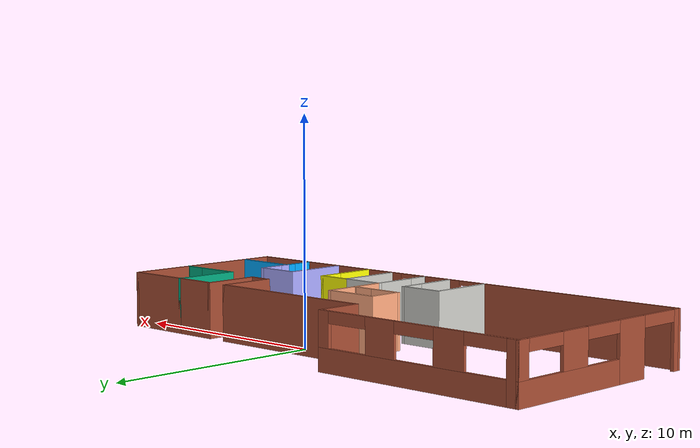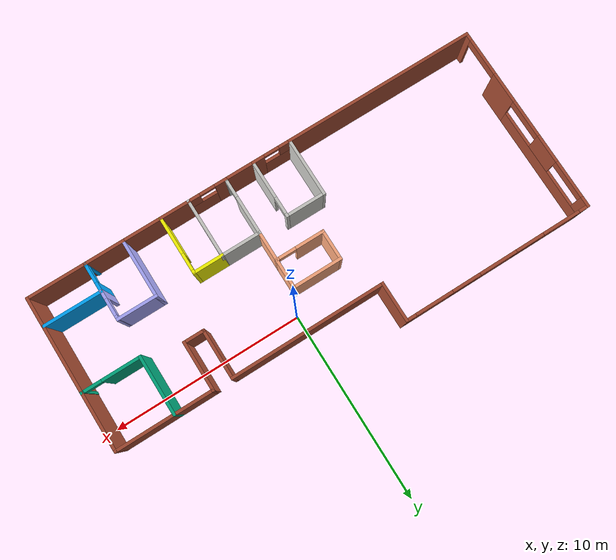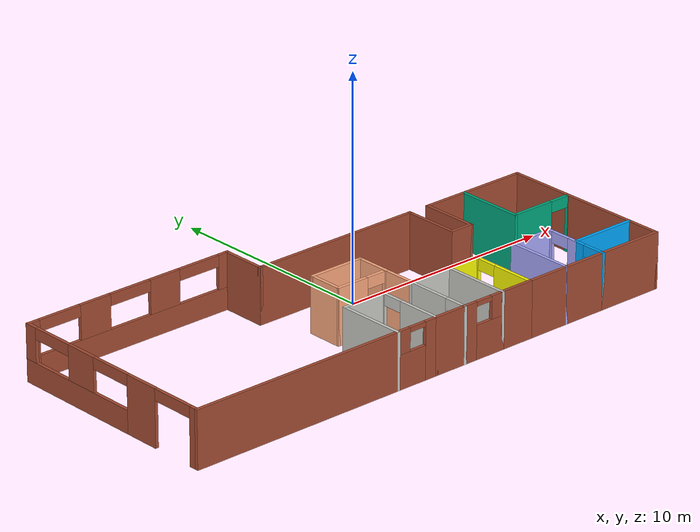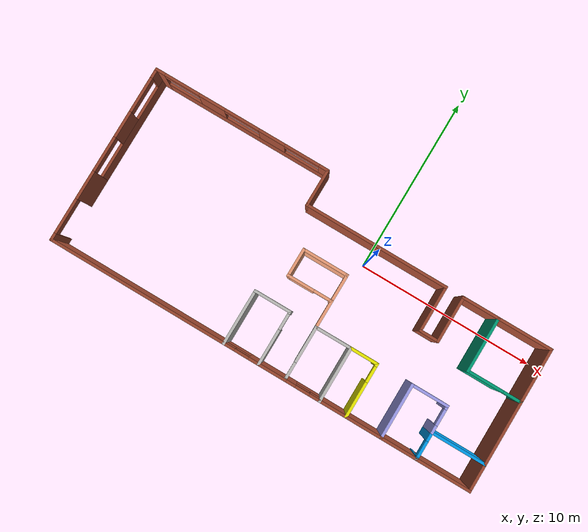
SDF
<?xml version='1.0'?>
<sdf version='1.6'>
  <model name='restaurant_renato'>
    <pose frame=''>-2 -2 0 0 -0 0</pose>
    <link name='Wall_1'>
      <pose frame=''>-12 0 0 0 -0 1.5708</pose>
      <visual name='Wall_1_Visual_0'>
        <pose frame=''>-4.85276 0 1.25 0 -0 0</pose>
        <geometry>
          <box>
            <size>0.444476 0.15 2.5</size>
          </box>
        </geometry>
        <material>
          <script>
            <uri>file://media/materials/scripts/gazebo.material</uri>
            <name>Gazebo/Bricks</name>
          </script>
          <ambient>0.333333 0.666667 1 1</ambient>
        </material>
        <meta>
          <layer>0</layer>
        </meta>
      </visual>
      <collision name='Wall_1_Collision_0'>
        <geometry>
          <box>
            <size>0.444476 0.15 2.5</size>
          </box>
        </geometry>
        <pose frame=''>-4.85276 0 1.25 0 -0 0</pose>
      </collision>
      <visual name='Wall_1_Visual_1'>
        <pose frame=''>-1.81526 0 1.25 0 -0 0</pose>
        <geometry>
          <box>
            <size>1.63052 0.15 2.5</size>
          </box>
        </geometry>
        <material>
          <script>
            <uri>file://media/materials/scripts/gazebo.material</uri>
            <name>Gazebo/Bricks</name>
          </script>
          <ambient>0.333333 0.666667 1 1</ambient>
        </material>
        <meta>
          <layer>0</layer>
        </meta>
      </visual>
      <collision name='Wall_1_Collision_1'>
        <geometry>
          <box>
            <size>1.63052 0.15 2.5</size>
          </box>
        </geometry>
        <pose frame=''>-1.81526 0 1.25 0 -0 0</pose>
      </collision>
      <visual name='Wall_1_Visual_2'>
        <pose frame=''>2.0375 0 0.5 0 -0 0</pose>
        <geometry>
          <box>
            <size>6.075 0.15 1</size>
          </box>
        </geometry>
        <material>
          <script>
            <uri>file://media/materials/scripts/gazebo.material</uri>
            <name>Gazebo/Bricks</name>
          </script>
          <ambient>0.333333 0.666667 1 1</ambient>
        </material>
        <meta>
          <layer>0</layer>
        </meta>
      </visual>
      <collision name='Wall_1_Collision_2'>
        <geometry>
          <box>
            <size>6.075 0.15 1</size>
          </box>
        </geometry>
        <pose frame=''>2.0375 0 0.5 0 -0 0</pose>
      </collision>
      <visual name='Wall_1_Visual_3'>
        <pose frame=''>1.75 0 1.75 0 -0 0</pose>
        <geometry>
          <box>
            <size>1.5 0.15 1.5</size>
          </box>
        </geometry>
        <material>
          <script>
            <uri>file://media/materials/scripts/gazebo.material</uri>
            <name>Gazebo/Bricks</name>
          </script>
          <ambient>0.333333 0.666667 1 1</ambient>
        </material>
        <meta>
          <layer>0</layer>
        </meta>
      </visual>
      <collision name='Wall_1_Collision_3'>
        <geometry>
          <box>
            <size>1.5 0.15 1.5</size>
          </box>
        </geometry>
        <pose frame=''>1.75 0 1.75 0 -0 0</pose>
      </collision>
      <visual name='Wall_1_Visual_4'>
        <pose frame=''>4.7875 0 1.75 0 -0 0</pose>
        <geometry>
          <box>
            <size>0.575 0.15 1.5</size>
          </box>
        </geometry>
        <material>
          <script>
            <uri>file://media/materials/scripts/gazebo.material</uri>
            <name>Gazebo/Bricks</name>
          </script>
          <ambient>0.333333 0.666667 1 1</ambient>
        </material>
        <meta>
          <layer>0</layer>
        </meta>
      </visual>
      <collision name='Wall_1_Collision_4'>
        <geometry>
          <box>
            <size>0.575 0.15 1.5</size>
          </box>
        </geometry>
        <pose frame=''>4.7875 0 1.75 0 -0 0</pose>
      </collision>
      <visual name='Wall_1_Visual_5'>
        <pose frame=''>-3.63052 0 2.25 0 -0 0</pose>
        <geometry>
          <box>
            <size>2 0.15 0.5</size>
          </box>
        </geometry>
        <material>
          <script>
            <uri>file://media/materials/scripts/gazebo.material</uri>
            <name>Gazebo/Bricks</name>
          </script>
          <ambient>0.333333 0.666667 1 1</ambient>
        </material>
        <meta>
          <layer>0</layer>
        </meta>
      </visual>
      <collision name='Wall_1_Collision_5'>
        <geometry>
          <box>
            <size>2 0.15 0.5</size>
          </box>
        </geometry>
        <pose frame=''>-3.63052 0 2.25 0 -0 0</pose>
      </collision>
      <visual name='Wall_1_Visual_6'>
        <pose frame=''>0 0 2.25 0 -0 0</pose>
        <geometry>
          <box>
            <size>2 0.15 0.5</size>
          </box>
        </geometry>
        <material>
          <script>
            <uri>file://media/materials/scripts/gazebo.material</uri>
            <name>Gazebo/Bricks</name>
          </script>
          <ambient>0.333333 0.666667 1 1</ambient>
        </material>
        <meta>
          <layer>0</layer>
        </meta>
      </visual>
      <collision name='Wall_1_Collision_6'>
        <geometry>
          <box>
            <size>2 0.15 0.5</size>
          </box>
        </geometry>
        <pose frame=''>0 0 2.25 0 -0 0</pose>
      </collision>
      <visual name='Wall_1_Visual_7'>
        <pose frame=''>3.5 0 2.25 0 -0 0</pose>
        <geometry>
          <box>
            <size>2 0.15 0.5</size>
          </box>
        </geometry>
        <material>
          <script>
            <uri>file://media/materials/scripts/gazebo.material</uri>
            <name>Gazebo/Bricks</name>
          </script>
          <ambient>0.333333 0.666667 1 1</ambient>
        </material>
        <meta>
          <layer>0</layer>
        </meta>
      </visual>
      <collision name='Wall_1_Collision_7'>
        <geometry>
          <box>
            <size>2 0.15 0.5</size>
          </box>
        </geometry>
        <pose frame=''>3.5 0 2.25 0 -0 0</pose>
      </collision>
    </link>
    <link name='Wall_2'>
      <pose frame=''>-7 5 0 0 -0 0</pose>
      <visual name='Wall_2_Visual_0'>
        <pose frame=''>-4.7875 0 1.25 0 -0 0</pose>
        <geometry>
          <box>
            <size>0.575 0.15 2.5</size>
          </box>
        </geometry>
        <material>
          <script>
            <uri>file://media/materials/scripts/gazebo.material</uri>
            <name>Gazebo/Bricks</name>
          </script>
          <ambient>0.333333 0.666667 1 1</ambient>
        </material>
        <meta>
          <layer>0</layer>
        </meta>
      </visual>
      <collision name='Wall_2_Collision_0'>
        <geometry>
          <box>
            <size>0.575 0.15 2.5</size>
          </box>
        </geometry>
        <pose frame=''>-4.7875 0 1.25 0 -0 0</pose>
      </collision>
      <visual name='Wall_2_Visual_1'>
        <pose frame=''>0.2875 0 0.5 0 -0 0</pose>
        <geometry>
          <box>
            <size>9.575 0.15 1</size>
          </box>
        </geometry>
        <material>
          <script>
            <uri>file://media/materials/scripts/gazebo.material</uri>
            <name>Gazebo/Bricks</name>
          </script>
          <ambient>0.333333 0.666667 1 1</ambient>
        </material>
        <meta>
          <layer>0</layer>
        </meta>
      </visual>
      <collision name='Wall_2_Collision_1'>
        <geometry>
          <box>
            <size>9.575 0.15 1</size>
          </box>
        </geometry>
        <pose frame=''>0.2875 0 0.5 0 -0 0</pose>
      </collision>
      <visual name='Wall_2_Visual_2'>
        <pose frame=''>-1.75 0 1.75 0 -0 0</pose>
        <geometry>
          <box>
            <size>1.5 0.15 1.5</size>
          </box>
        </geometry>
        <material>
          <script>
            <uri>file://media/materials/scripts/gazebo.material</uri>
            <name>Gazebo/Bricks</name>
          </script>
          <ambient>0.333333 0.666667 1 1</ambient>
        </material>
        <meta>
          <layer>0</layer>
        </meta>
      </visual>
      <collision name='Wall_2_Collision_2'>
        <geometry>
          <box>
            <size>1.5 0.15 1.5</size>
          </box>
        </geometry>
        <pose frame=''>-1.75 0 1.75 0 -0 0</pose>
      </collision>
      <visual name='Wall_2_Visual_3'>
        <pose frame=''>1.75 0 1.75 0 -0 0</pose>
        <geometry>
          <box>
            <size>1.5 0.15 1.5</size>
          </box>
        </geometry>
        <material>
          <script>
            <uri>file://media/materials/scripts/gazebo.material</uri>
            <name>Gazebo/Bricks</name>
          </script>
          <ambient>0.333333 0.666667 1 1</ambient>
        </material>
        <meta>
          <layer>0</layer>
        </meta>
      </visual>
      <collision name='Wall_2_Collision_3'>
        <geometry>
          <box>
            <size>1.5 0.15 1.5</size>
          </box>
        </geometry>
        <pose frame=''>1.75 0 1.75 0 -0 0</pose>
      </collision>
      <visual name='Wall_2_Visual_4'>
        <pose frame=''>4.7875 0 1.75 0 -0 0</pose>
        <geometry>
          <box>
            <size>0.575 0.15 1.5</size>
          </box>
        </geometry>
        <material>
          <script>
            <uri>file://media/materials/scripts/gazebo.material</uri>
            <name>Gazebo/Bricks</name>
          </script>
          <ambient>0.333333 0.666667 1 1</ambient>
        </material>
        <meta>
          <layer>0</layer>
        </meta>
      </visual>
      <collision name='Wall_2_Collision_4'>
        <geometry>
          <box>
            <size>0.575 0.15 1.5</size>
          </box>
        </geometry>
        <pose frame=''>4.7875 0 1.75 0 -0 0</pose>
      </collision>
      <visual name='Wall_2_Visual_5'>
        <pose frame=''>-3.5 0 2.25 0 -0 0</pose>
        <geometry>
          <box>
            <size>2 0.15 0.5</size>
          </box>
        </geometry>
        <material>
          <script>
            <uri>file://media/materials/scripts/gazebo.material</uri>
            <name>Gazebo/Bricks</name>
          </script>
          <ambient>0.333333 0.666667 1 1</ambient>
        </material>
        <meta>
          <layer>0</layer>
        </meta>
      </visual>
      <collision name='Wall_2_Collision_5'>
        <geometry>
          <box>
            <size>2 0.15 0.5</size>
          </box>
        </geometry>
        <pose frame=''>-3.5 0 2.25 0 -0 0</pose>
      </collision>
      <visual name='Wall_2_Visual_6'>
        <pose frame=''>0 0 2.25 0 -0 0</pose>
        <geometry>
          <box>
            <size>2 0.15 0.5</size>
          </box>
        </geometry>
        <material>
          <script>
            <uri>file://media/materials/scripts/gazebo.material</uri>
            <name>Gazebo/Bricks</name>
          </script>
          <ambient>0.333333 0.666667 1 1</ambient>
        </material>
        <meta>
          <layer>0</layer>
        </meta>
      </visual>
      <collision name='Wall_2_Collision_6'>
        <geometry>
          <box>
            <size>2 0.15 0.5</size>
          </box>
        </geometry>
        <pose frame=''>0 0 2.25 0 -0 0</pose>
      </collision>
      <visual name='Wall_2_Visual_7'>
        <pose frame=''>3.5 0 2.25 0 -0 0</pose>
        <geometry>
          <box>
            <size>2 0.15 0.5</size>
          </box>
        </geometry>
        <material>
          <script>
            <uri>file://media/materials/scripts/gazebo.material</uri>
            <name>Gazebo/Bricks</name>
          </script>
          <ambient>0.333333 0.666667 1 1</ambient>
        </material>
        <meta>
          <layer>0</layer>
        </meta>
      </visual>
      <collision name='Wall_2_Collision_7'>
        <geometry>
          <box>
            <size>2 0.15 0.5</size>
          </box>
        </geometry>
        <pose frame=''>3.5 0 2.25 0 -0 0</pose>
      </collision>
    </link>
    <link name='Wall_24'>
      <collision name='Wall_24_Collision'>
        <geometry>
          <box>
            <size>3.15 0.15 2.5</size>
          </box>
        </geometry>
        <pose frame=''>0 0 1.25 0 -0 0</pose>
      </collision>
      <visual name='Wall_24_Visual'>
        <pose frame=''>0 0 1.25 0 -0 0</pose>
        <geometry>
          <box>
            <size>3.15 0.15 2.5</size>
          </box>
        </geometry>
        <material>
          <script>
            <uri>file://media/materials/scripts/gazebo.material</uri>
            <name>Gazebo/CeilingTiled</name>
          </script>
          <ambient>1 0 0 1</ambient>
        </material>
        <meta>
          <layer>0</layer>
        </meta>
      </visual>
      <pose frame=''>-2 -3.5 0 0 -0 1.5708</pose>
    </link>
    <link name='Wall_25'>
      <collision name='Wall_25_Collision'>
        <geometry>
          <box>
            <size>2.15 0.15 2.5</size>
          </box>
        </geometry>
        <pose frame=''>0 0 1.25 0 -0 0</pose>
      </collision>
      <visual name='Wall_25_Visual'>
        <pose frame=''>0 0 1.25 0 -0 0</pose>
        <geometry>
          <box>
            <size>2.15 0.15 2.5</size>
          </box>
        </geometry>
        <material>
          <script>
            <uri>file://media/materials/scripts/gazebo.material</uri>
            <name>Gazebo/CeilingTiled</name>
          </script>
          <ambient>1 0 0 1</ambient>
        </material>
        <meta>
          <layer>0</layer>
        </meta>
      </visual>
      <pose frame=''>-1 -2 0 0 -0 0</pose>
    </link>
    <link name='Wall_26'>
      <pose frame=''>0 -3.5 0 0 0 -1.5708</pose>
      <visual name='Wall_26_Visual_0'>
        <pose frame=''>-1.47325 0 1.25 0 -0 0</pose>
        <geometry>
          <box>
            <size>0.203506 0.15 2.5</size>
          </box>
        </geometry>
        <material>
          <script>
            <uri>file://media/materials/scripts/gazebo.material</uri>
            <name>Gazebo/CeilingTiled</name>
          </script>
          <ambient>1 0 0 1</ambient>
        </material>
        <meta>
          <layer>0</layer>
        </meta>
      </visual>
      <collision name='Wall_26_Collision_0'>
        <geometry>
          <box>
            <size>0.203506 0.15 2.5</size>
          </box>
        </geometry>
        <pose frame=''>-1.47325 0 1.25 0 -0 0</pose>
      </collision>
      <visual name='Wall_26_Visual_1'>
        <pose frame=''>0.551753 0 1.25 0 -0 0</pose>
        <geometry>
          <box>
            <size>2.04649 0.15 2.5</size>
          </box>
        </geometry>
        <material>
          <script>
            <uri>file://media/materials/scripts/gazebo.material</uri>
            <name>Gazebo/CeilingTiled</name>
          </script>
          <ambient>1 0 0 1</ambient>
        </material>
        <meta>
          <layer>0</layer>
        </meta>
      </visual>
      <collision name='Wall_26_Collision_1'>
        <geometry>
          <box>
            <size>2.04649 0.15 2.5</size>
          </box>
        </geometry>
        <pose frame=''>0.551753 0 1.25 0 -0 0</pose>
      </collision>
      <visual name='Wall_26_Visual_2'>
        <pose frame=''>-0.921494 0 2.25 0 -0 0</pose>
        <geometry>
          <box>
            <size>0.9 0.15 0.5</size>
          </box>
        </geometry>
        <material>
          <script>
            <uri>file://media/materials/scripts/gazebo.material</uri>
            <name>Gazebo/CeilingTiled</name>
          </script>
          <ambient>1 0 0 1</ambient>
        </material>
        <meta>
          <layer>0</layer>
        </meta>
      </visual>
      <collision name='Wall_26_Collision_2'>
        <geometry>
          <box>
            <size>0.9 0.15 0.5</size>
          </box>
        </geometry>
        <pose frame=''>-0.921494 0 2.25 0 -0 0</pose>
      </collision>
    </link>
    <link name='Wall_27'>
      <pose frame=''>-1 -5 0 0 -0 3.14159</pose>
      <visual name='Wall_27_Visual_0'>
        <pose frame=''>-0.7375 0 1.25 0 -0 0</pose>
        <geometry>
          <box>
            <size>0.675 0.15 2.5</size>
          </box>
        </geometry>
        <material>
          <script>
            <uri>file://media/materials/scripts/gazebo.material</uri>
            <name>Gazebo/Bricks</name>
          </script>
          <ambient>0.333333 0.666667 1 1</ambient>
        </material>
        <meta>
          <layer>0</layer>
        </meta>
      </visual>
      <collision name='Wall_27_Collision_0'>
        <geometry>
          <box>
            <size>0.675 0.15 2.5</size>
          </box>
        </geometry>
        <pose frame=''>-0.7375 0 1.25 0 -0 0</pose>
      </collision>
      <visual name='Wall_27_Visual_1'>
        <pose frame=''>0.3375 0 0.75 0 -0 0</pose>
        <geometry>
          <box>
            <size>1.475 0.15 1.5</size>
          </box>
        </geometry>
        <material>
          <script>
            <uri>file://media/materials/scripts/gazebo.material</uri>
            <name>Gazebo/Bricks</name>
          </script>
          <ambient>0.333333 0.666667 1 1</ambient>
        </material>
        <meta>
          <layer>0</layer>
        </meta>
      </visual>
      <collision name='Wall_27_Collision_1'>
        <geometry>
          <box>
            <size>1.475 0.15 1.5</size>
          </box>
        </geometry>
        <pose frame=''>0.3375 0 0.75 0 -0 0</pose>
      </collision>
      <visual name='Wall_27_Visual_2'>
        <pose frame=''>0.7375 0 2 0 -0 0</pose>
        <geometry>
          <box>
            <size>0.675 0.15 1</size>
          </box>
        </geometry>
        <material>
          <script>
            <uri>file://media/materials/scripts/gazebo.material</uri>
            <name>Gazebo/Bricks</name>
          </script>
          <ambient>0.333333 0.666667 1 1</ambient>
        </material>
        <meta>
          <layer>0</layer>
        </meta>
      </visual>
      <collision name='Wall_27_Collision_2'>
        <geometry>
          <box>
            <size>0.675 0.15 1</size>
          </box>
        </geometry>
        <pose frame=''>0.7375 0 2 0 -0 0</pose>
      </collision>
      <visual name='Wall_27_Visual_3'>
        <pose frame=''>0 0 2.4 0 -0 0</pose>
        <geometry>
          <box>
            <size>0.8 0.15 0.2</size>
          </box>
        </geometry>
        <material>
          <script>
            <uri>file://media/materials/scripts/gazebo.material</uri>
            <name>Gazebo/Bricks</name>
          </script>
          <ambient>0.333333 0.666667 1 1</ambient>
        </material>
        <meta>
          <layer>0</layer>
        </meta>
      </visual>
      <collision name='Wall_27_Collision_3'>
        <geometry>
          <box>
            <size>0.8 0.15 0.2</size>
          </box>
        </geometry>
        <pose frame=''>0 0 2.4 0 -0 0</pose>
      </collision>
    </link>
    <link name='Wall_29'>
      <collision name='Wall_29_Collision'>
        <geometry>
          <box>
            <size>1.65 0.15 2.5</size>
          </box>
        </geometry>
        <pose frame=''>0 0 1.25 0 -0 0</pose>
      </collision>
      <visual name='Wall_29_Visual'>
        <pose frame=''>0 0 1.25 0 -0 0</pose>
        <geometry>
          <box>
            <size>1.65 0.15 2.5</size>
          </box>
        </geometry>
        <material>
          <script>
            <uri>file://media/materials/scripts/gazebo.material</uri>
            <name>Gazebo/Bricks</name>
          </script>
          <ambient>0.333333 0.666667 1 1</ambient>
        </material>
        <meta>
          <layer>0</layer>
        </meta>
      </visual>
      <pose frame=''>0.75 -5 0 0 -0 0</pose>
    </link>
    <link name='Wall_30'>
      <pose frame=''>1.5 -3.5 0 0 -0 1.5708</pose>
      <visual name='Wall_30_Visual_0'>
        <pose frame=''>-1.48476 0 1.25 0 -0 0</pose>
        <geometry>
          <box>
            <size>0.18049 0.15 2.5</size>
          </box>
        </geometry>
        <material>
          <script>
            <uri>file://media/materials/scripts/gazebo.material</uri>
            <name>Gazebo/CeilingTiled</name>
          </script>
          <ambient>1 0 0.498039 1</ambient>
        </material>
        <meta>
          <layer>0</layer>
        </meta>
      </visual>
      <collision name='Wall_30_Collision_0'>
        <geometry>
          <box>
            <size>0.18049 0.15 2.5</size>
          </box>
        </geometry>
        <pose frame=''>-1.48476 0 1.25 0 -0 0</pose>
      </collision>
      <visual name='Wall_30_Visual_1'>
        <pose frame=''>0.540245 0 1.25 0 -0 0</pose>
        <geometry>
          <box>
            <size>2.06951 0.15 2.5</size>
          </box>
        </geometry>
        <material>
          <script>
            <uri>file://media/materials/scripts/gazebo.material</uri>
            <name>Gazebo/CeilingTiled</name>
          </script>
          <ambient>1 0 0.498039 1</ambient>
        </material>
        <meta>
          <layer>0</layer>
        </meta>
      </visual>
      <collision name='Wall_30_Collision_1'>
        <geometry>
          <box>
            <size>2.06951 0.15 2.5</size>
          </box>
        </geometry>
        <pose frame=''>0.540245 0 1.25 0 -0 0</pose>
      </collision>
      <visual name='Wall_30_Visual_2'>
        <pose frame=''>-0.94451 0 2.25 0 -0 0</pose>
        <geometry>
          <box>
            <size>0.9 0.15 0.5</size>
          </box>
        </geometry>
        <material>
          <script>
            <uri>file://media/materials/scripts/gazebo.material</uri>
            <name>Gazebo/CeilingTiled</name>
          </script>
          <ambient>1 0 0.498039 1</ambient>
        </material>
        <meta>
          <layer>0</layer>
        </meta>
      </visual>
      <collision name='Wall_30_Collision_2'>
        <geometry>
          <box>
            <size>0.9 0.15 0.5</size>
          </box>
        </geometry>
        <pose frame=''>-0.94451 0 2.25 0 -0 0</pose>
      </collision>
    </link>
    <link name='Wall_31'>
      <collision name='Wall_31_Collision'>
        <geometry>
          <box>
            <size>2.15048 0.15 2.5</size>
          </box>
        </geometry>
        <pose frame=''>0 0 1.25 0 -0 0</pose>
      </collision>
      <visual name='Wall_31_Visual'>
        <pose frame=''>0 0 1.25 0 -0 0</pose>
        <geometry>
          <box>
            <size>2.15048 0.15 2.5</size>
          </box>
        </geometry>
        <material>
          <script>
            <uri>file://media/materials/scripts/gazebo.material</uri>
            <name>Gazebo/CeilingTiled</name>
          </script>
          <ambient>1 0 0.498039 1</ambient>
        </material>
        <meta>
          <layer>0</layer>
        </meta>
      </visual>
      <pose frame=''>2.5 -2 0 0 -0 0</pose>
    </link>
    <link name='Wall_32'>
      <collision name='Wall_32_Collision'>
        <geometry>
          <box>
            <size>3.15 0.15 2.5</size>
          </box>
        </geometry>
        <pose frame=''>0 0 1.25 0 -0 0</pose>
      </collision>
      <visual name='Wall_32_Visual'>
        <pose frame=''>0 0 1.25 0 -0 0</pose>
        <geometry>
          <box>
            <size>3.15 0.15 2.5</size>
          </box>
        </geometry>
        <material>
          <script>
            <uri>file://media/materials/scripts/gazebo.material</uri>
            <name>Gazebo/CeilingTiled</name>
          </script>
          <ambient>1 0 0.498039 1</ambient>
        </material>
        <meta>
          <layer>0</layer>
        </meta>
      </visual>
      <pose frame=''>3.5 -3.5 0 0 0 -1.5708</pose>
    </link>
    <link name='Wall_36'>
      <collision name='Wall_36_Collision'>
        <geometry>
          <box>
            <size>1.65 0.15 2.5</size>
          </box>
        </geometry>
        <pose frame=''>0 0 1.25 0 -0 0</pose>
      </collision>
      <visual name='Wall_36_Visual'>
        <pose frame=''>0 0 1.25 0 -0 0</pose>
        <geometry>
          <box>
            <size>1.65 0.15 2.5</size>
          </box>
        </geometry>
        <material>
          <script>
            <uri>file://media/materials/scripts/gazebo.material</uri>
            <name>Gazebo/Grey</name>
          </script>
          <ambient>1 0.666667 0.498039 1</ambient>
        </material>
        <meta>
          <layer>0</layer>
        </meta>
      </visual>
      <pose frame=''>1.5 -1.25 0 0 -0 1.5708</pose>
    </link>
    <link name='Wall_37'>
      <pose frame=''>0.25 -0.5 0 0 -0 3.14159</pose>
      <visual name='Wall_37_Visual_0'>
        <pose frame=''>-1.22433 0 1.25 0 -0 0</pose>
        <geometry>
          <box>
            <size>0.201342 0.15 2.5</size>
          </box>
        </geometry>
        <material>
          <script>
            <uri>file://media/materials/scripts/gazebo.material</uri>
            <name>Gazebo/Grey</name>
          </script>
          <ambient>1 0.666667 0.498039 1</ambient>
        </material>
        <meta>
          <layer>0</layer>
        </meta>
      </visual>
      <collision name='Wall_37_Collision_0'>
        <geometry>
          <box>
            <size>0.201342 0.15 2.5</size>
          </box>
        </geometry>
        <pose frame=''>-1.22433 0 1.25 0 -0 0</pose>
      </collision>
      <visual name='Wall_37_Visual_1'>
        <pose frame=''>0.550671 0 1.25 0 -0 0</pose>
        <geometry>
          <box>
            <size>1.54866 0.15 2.5</size>
          </box>
        </geometry>
        <material>
          <script>
            <uri>file://media/materials/scripts/gazebo.material</uri>
            <name>Gazebo/Grey</name>
          </script>
          <ambient>1 0.666667 0.498039 1</ambient>
        </material>
        <meta>
          <layer>0</layer>
        </meta>
      </visual>
      <collision name='Wall_37_Collision_1'>
        <geometry>
          <box>
            <size>1.54866 0.15 2.5</size>
          </box>
        </geometry>
        <pose frame=''>0.550671 0 1.25 0 -0 0</pose>
      </collision>
      <visual name='Wall_37_Visual_2'>
        <pose frame=''>-0.673658 0 2.25 0 -0 0</pose>
        <geometry>
          <box>
            <size>0.9 0.15 0.5</size>
          </box>
        </geometry>
        <material>
          <script>
            <uri>file://media/materials/scripts/gazebo.material</uri>
            <name>Gazebo/Grey</name>
          </script>
          <ambient>1 0.666667 0.498039 1</ambient>
        </material>
        <meta>
          <layer>0</layer>
        </meta>
      </visual>
      <collision name='Wall_37_Collision_2'>
        <geometry>
          <box>
            <size>0.9 0.15 0.5</size>
          </box>
        </geometry>
        <pose frame=''>-0.673658 0 2.25 0 -0 0</pose>
      </collision>
    </link>
    <link name='Wall_38'>
      <collision name='Wall_38_Collision'>
        <geometry>
          <box>
            <size>1.65 0.15 2.5</size>
          </box>
        </geometry>
        <pose frame=''>0 0 1.25 0 -0 0</pose>
      </collision>
      <visual name='Wall_38_Visual'>
        <pose frame=''>0 0 1.25 0 -0 0</pose>
        <geometry>
          <box>
            <size>1.65 0.15 2.5</size>
          </box>
        </geometry>
        <material>
          <script>
            <uri>file://media/materials/scripts/gazebo.material</uri>
            <name>Gazebo/Grey</name>
          </script>
          <ambient>1 0.666667 0.498039 1</ambient>
        </material>
        <meta>
          <layer>0</layer>
        </meta>
      </visual>
      <pose frame=''>-1 0.25 0 0 -0 1.5708</pose>
    </link>
    <link name='Wall_39'>
      <collision name='Wall_39_Collision'>
        <geometry>
          <box>
            <size>2.65 0.15 2.5</size>
          </box>
        </geometry>
        <pose frame=''>0 0 1.25 0 -0 0</pose>
      </collision>
      <visual name='Wall_39_Visual'>
        <pose frame=''>0 0 1.25 0 -0 0</pose>
        <geometry>
          <box>
            <size>2.65 0.15 2.5</size>
          </box>
        </geometry>
        <material>
          <script>
            <uri>file://media/materials/scripts/gazebo.material</uri>
            <name>Gazebo/Grey</name>
          </script>
          <ambient>1 0.666667 0.498039 1</ambient>
        </material>
        <meta>
          <layer>0</layer>
        </meta>
      </visual>
      <pose frame=''>0.25 1 0 0 -0 0</pose>
    </link>
    <link name='Wall_40'>
      <collision name='Wall_40_Collision'>
        <geometry>
          <box>
            <size>1.65 0.15 2.5</size>
          </box>
        </geometry>
        <pose frame=''>0 0 1.25 0 -0 0</pose>
      </collision>
      <visual name='Wall_40_Visual'>
        <pose frame=''>0 0 1.25 0 -0 0</pose>
        <geometry>
          <box>
            <size>1.65 0.15 2.5</size>
          </box>
        </geometry>
        <material>
          <script>
            <uri>file://media/materials/scripts/gazebo.material</uri>
            <name>Gazebo/Grey</name>
          </script>
          <ambient>1 0.666667 0.498039 1</ambient>
        </material>
        <meta>
          <layer>0</layer>
        </meta>
      </visual>
      <pose frame=''>1.5 0.25 0 0 0 -1.5708</pose>
    </link>
    <link name='Wall_44'>
      <collision name='Wall_44_Collision'>
        <geometry>
          <box>
            <size>1.65 0.15 2.5</size>
          </box>
        </geometry>
        <pose frame=''>0 0 1.25 0 -0 0</pose>
      </collision>
      <visual name='Wall_44_Visual'>
        <pose frame=''>0 0 1.25 0 -0 0</pose>
        <geometry>
          <box>
            <size>1.65 0.15 2.5</size>
          </box>
        </geometry>
        <material>
          <script>
            <uri>file://media/materials/scripts/gazebo.material</uri>
            <name>Gazebo/Grey</name>
          </script>
          <ambient>1 1 0 1</ambient>
        </material>
        <meta>
          <layer>0</layer>
        </meta>
      </visual>
      <pose frame=''>4.25 -2 0 0 -0 0</pose>
    </link>
    <link name='Wall_45'>
      <pose frame=''>5 -3.5 0 0 0 -1.5708</pose>
      <visual name='Wall_45_Visual_0'>
        <pose frame=''>-1.46507 0 1.25 0 -0 0</pose>
        <geometry>
          <box>
            <size>0.219867 0.15 2.5</size>
          </box>
        </geometry>
        <material>
          <script>
            <uri>file://media/materials/scripts/gazebo.material</uri>
            <name>Gazebo/Grey</name>
          </script>
          <ambient>1 1 0 1</ambient>
        </material>
        <meta>
          <layer>0</layer>
        </meta>
      </visual>
      <collision name='Wall_45_Collision_0'>
        <geometry>
          <box>
            <size>0.219867 0.15 2.5</size>
          </box>
        </geometry>
        <pose frame=''>-1.46507 0 1.25 0 -0 0</pose>
      </collision>
      <visual name='Wall_45_Visual_1'>
        <pose frame=''>0.559934 0 1.25 0 -0 0</pose>
        <geometry>
          <box>
            <size>2.03013 0.15 2.5</size>
          </box>
        </geometry>
        <material>
          <script>
            <uri>file://media/materials/scripts/gazebo.material</uri>
            <name>Gazebo/Grey</name>
          </script>
          <ambient>1 1 0 1</ambient>
        </material>
        <meta>
          <layer>0</layer>
        </meta>
      </visual>
      <collision name='Wall_45_Collision_1'>
        <geometry>
          <box>
            <size>2.03013 0.15 2.5</size>
          </box>
        </geometry>
        <pose frame=''>0.559934 0 1.25 0 -0 0</pose>
      </collision>
      <visual name='Wall_45_Visual_2'>
        <pose frame=''>-0.905133 0 2.25 0 -0 0</pose>
        <geometry>
          <box>
            <size>0.9 0.15 0.5</size>
          </box>
        </geometry>
        <material>
          <script>
            <uri>file://media/materials/scripts/gazebo.material</uri>
            <name>Gazebo/Grey</name>
          </script>
          <ambient>1 1 0 1</ambient>
        </material>
        <meta>
          <layer>0</layer>
        </meta>
      </visual>
      <collision name='Wall_45_Collision_2'>
        <geometry>
          <box>
            <size>0.9 0.15 0.5</size>
          </box>
        </geometry>
        <pose frame=''>-0.905133 0 2.25 0 -0 0</pose>
      </collision>
    </link>
    <link name='Wall_46'>
      <collision name='Wall_46_Collision'>
        <geometry>
          <box>
            <size>1.65 0.15 2.5</size>
          </box>
        </geometry>
        <pose frame=''>0 0 1.25 0 -0 0</pose>
      </collision>
      <visual name='Wall_46_Visual'>
        <pose frame=''>0 0 1.25 0 -0 0</pose>
        <geometry>
          <box>
            <size>1.65 0.15 2.5</size>
          </box>
        </geometry>
        <material>
          <script>
            <uri>file://media/materials/scripts/gazebo.material</uri>
            <name>Gazebo/Bricks</name>
          </script>
          <ambient>0.333333 0.666667 1 1</ambient>
        </material>
        <meta>
          <layer>0</layer>
        </meta>
      </visual>
      <pose frame=''>4.25 -5 0 0 -0 3.14159</pose>
    </link>
    <link name='Wall_48'>
      <collision name='Wall_48_Collision'>
        <geometry>
          <box>
            <size>2.15 0.15 2.5</size>
          </box>
        </geometry>
        <pose frame=''>0 0 1.25 0 -0 0</pose>
      </collision>
      <visual name='Wall_48_Visual'>
        <pose frame=''>0 0 1.25 0 -0 0</pose>
        <geometry>
          <box>
            <size>2.15 0.15 2.5</size>
          </box>
        </geometry>
        <material>
          <script>
            <uri>file://media/materials/scripts/gazebo.material</uri>
            <name>Gazebo/Bricks</name>
          </script>
          <ambient>0.333333 0.666667 1 1</ambient>
        </material>
        <meta>
          <layer>0</layer>
        </meta>
      </visual>
      <pose frame=''>6 -5 0 0 -0 0</pose>
    </link>
    <link name='Wall_53'>
      <collision name='Wall_53_Collision'>
        <geometry>
          <box>
            <size>2.65 0.15 2.5</size>
          </box>
        </geometry>
        <pose frame=''>0 0 1.25 0 -0 0</pose>
      </collision>
      <visual name='Wall_53_Visual'>
        <pose frame=''>0 0 1.25 0 -0 0</pose>
        <geometry>
          <box>
            <size>2.65 0.15 2.5</size>
          </box>
        </geometry>
        <material>
          <script>
            <uri>file://media/materials/scripts/gazebo.material</uri>
            <name>Gazebo/Bricks</name>
          </script>
          <ambient>0.333333 0.666667 1 1</ambient>
        </material>
        <meta>
          <layer>0</layer>
        </meta>
      </visual>
      <pose frame=''>6 1.75 0 0 0 -1.5708</pose>
    </link>
    <link name='Wall_55'>
      <collision name='Wall_55_Collision'>
        <geometry>
          <box>
            <size>1.15 0.15 2.5</size>
          </box>
        </geometry>
        <pose frame=''>0 0 1.25 0 -0 0</pose>
      </collision>
      <visual name='Wall_55_Visual'>
        <pose frame=''>0 0 1.25 0 -0 0</pose>
        <geometry>
          <box>
            <size>1.15 0.15 2.5</size>
          </box>
        </geometry>
        <material>
          <script>
            <uri>file://media/materials/scripts/gazebo.material</uri>
            <name>Gazebo/Bricks</name>
          </script>
          <ambient>0.333333 0.666667 1 1</ambient>
        </material>
        <meta>
          <layer>0</layer>
        </meta>
      </visual>
      <pose frame=''>6.5 0.5 0 0 -0 0</pose>
    </link>
    <link name='Wall_56'>
      <collision name='Wall_56_Collision'>
        <geometry>
          <box>
            <size>2.65 0.15 2.5</size>
          </box>
        </geometry>
        <pose frame=''>0 0 1.25 0 -0 0</pose>
      </collision>
      <visual name='Wall_56_Visual'>
        <pose frame=''>0 0 1.25 0 -0 0</pose>
        <geometry>
          <box>
            <size>2.65 0.15 2.5</size>
          </box>
        </geometry>
        <material>
          <script>
            <uri>file://media/materials/scripts/gazebo.material</uri>
            <name>Gazebo/Bricks</name>
          </script>
          <ambient>0.333333 0.666667 1 1</ambient>
        </material>
        <meta>
          <layer>0</layer>
        </meta>
      </visual>
      <pose frame=''>7 1.75 0 0 -0 1.5708</pose>
    </link>
    <link name='Wall_57'>
      <collision name='Wall_57_Collision'>
        <geometry>
          <box>
            <size>2.15 0.15 2.5</size>
          </box>
        </geometry>
        <pose frame=''>0 0 1.25 0 -0 0</pose>
      </collision>
      <visual name='Wall_57_Visual'>
        <pose frame=''>0 0 1.25 0 -0 0</pose>
        <geometry>
          <box>
            <size>2.15 0.15 2.5</size>
          </box>
        </geometry>
        <material>
          <script>
            <uri>file://media/materials/scripts/gazebo.material</uri>
            <name>Gazebo/Bricks</name>
          </script>
          <ambient>0.333333 0.666667 1 1</ambient>
        </material>
        <meta>
          <layer>0</layer>
        </meta>
      </visual>
      <pose frame=''>8 3 0 0 -0 0</pose>
    </link>
    <link name='Wall_6'>
      <collision name='Wall_6_Collision'>
        <geometry>
          <box>
            <size>10.15 0.15 2.5</size>
          </box>
        </geometry>
        <pose frame=''>0 0 1.25 0 -0 0</pose>
      </collision>
      <visual name='Wall_6_Visual'>
        <pose frame=''>0 0 1.25 0 -0 0</pose>
        <geometry>
          <box>
            <size>10.15 0.15 2.5</size>
          </box>
        </geometry>
        <material>
          <script>
            <uri>file://media/materials/scripts/gazebo.material</uri>
            <name>Gazebo/Bricks</name>
          </script>
          <ambient>0.333333 0.666667 1 1</ambient>
        </material>
        <meta>
          <layer>0</layer>
        </meta>
      </visual>
      <pose frame=''>-7 -5 0 0 -0 0</pose>
    </link>
    <link name='Wall_60'>
      <collision name='Wall_60_Collision'>
        <geometry>
          <box>
            <size>3.15 0.15 2.5</size>
          </box>
        </geometry>
        <pose frame=''>0 0 1.25 0 -0 0</pose>
      </collision>
      <visual name='Wall_60_Visual'>
        <pose frame=''>0 0 1.25 0 -0 0</pose>
        <geometry>
          <box>
            <size>3.15 0.15 2.5</size>
          </box>
        </geometry>
        <material>
          <script>
            <uri>file://media/materials/scripts/gazebo.material</uri>
            <name>Gazebo/Grey</name>
          </script>
          <ambient>0.666667 0.666667 1 1</ambient>
        </material>
        <meta>
          <layer>0</layer>
        </meta>
      </visual>
      <pose frame=''>7 -3.5 0 0 -0 1.5708</pose>
    </link>
    <link name='Wall_64'>
      <pose frame=''>10.5 0 0 0 -0 3.14159</pose>
      <visual name='Wall_64_Visual_0'>
        <pose frame=''>-1.48453 0 1.25 0 -0 0</pose>
        <geometry>
          <box>
            <size>0.180937 0.15 2.5</size>
          </box>
        </geometry>
        <material>
          <script>
            <uri>file://media/materials/scripts/gazebo.material</uri>
            <name>Gazebo/Grey</name>
          </script>
          <ambient>0 0.666667 0.498039 1</ambient>
        </material>
        <meta>
          <layer>0</layer>
        </meta>
      </visual>
      <collision name='Wall_64_Collision_0'>
        <geometry>
          <box>
            <size>0.180937 0.15 2.5</size>
          </box>
        </geometry>
        <pose frame=''>-1.48453 0 1.25 0 -0 0</pose>
      </collision>
      <visual name='Wall_64_Visual_1'>
        <pose frame=''>0.540468 0 1.25 0 -0 0</pose>
        <geometry>
          <box>
            <size>2.06906 0.15 2.5</size>
          </box>
        </geometry>
        <material>
          <script>
            <uri>file://media/materials/scripts/gazebo.material</uri>
            <name>Gazebo/Grey</name>
          </script>
          <ambient>0 0.666667 0.498039 1</ambient>
        </material>
        <meta>
          <layer>0</layer>
        </meta>
      </visual>
      <collision name='Wall_64_Collision_1'>
        <geometry>
          <box>
            <size>2.06906 0.15 2.5</size>
          </box>
        </geometry>
        <pose frame=''>0.540468 0 1.25 0 -0 0</pose>
      </collision>
      <visual name='Wall_64_Visual_2'>
        <pose frame=''>-0.944063 0 2.25 0 -0 0</pose>
        <geometry>
          <box>
            <size>0.9 0.15 0.5</size>
          </box>
        </geometry>
        <material>
          <script>
            <uri>file://media/materials/scripts/gazebo.material</uri>
            <name>Gazebo/Grey</name>
          </script>
          <ambient>0 0.666667 0.498039 1</ambient>
        </material>
        <meta>
          <layer>0</layer>
        </meta>
      </visual>
      <collision name='Wall_64_Collision_2'>
        <geometry>
          <box>
            <size>0.9 0.15 0.5</size>
          </box>
        </geometry>
        <pose frame=''>-0.944063 0 2.25 0 -0 0</pose>
      </collision>
    </link>
    <link name='Wall_66'>
      <collision name='Wall_66_Collision'>
        <geometry>
          <box>
            <size>3.15 0.15 2.5</size>
          </box>
        </geometry>
        <pose frame=''>0 0 1.25 0 -0 0</pose>
      </collision>
      <visual name='Wall_66_Visual'>
        <pose frame=''>0 0 1.25 0 -0 0</pose>
        <geometry>
          <box>
            <size>3.15 0.15 2.5</size>
          </box>
        </geometry>
        <material>
          <script>
            <uri>file://media/materials/scripts/gazebo.material</uri>
            <name>Gazebo/Grey</name>
          </script>
          <ambient>0 0.666667 0.498039 1</ambient>
        </material>
        <meta>
          <layer>0</layer>
        </meta>
      </visual>
      <pose frame=''>9 1.5 0 0 0 -1.5708</pose>
    </link>
    <link name='Wall_68'>
      <collision name='Wall_68_Collision'>
        <geometry>
          <box>
            <size>2.15 0.15 2.5</size>
          </box>
        </geometry>
        <pose frame=''>0 0 1.25 0 -0 0</pose>
      </collision>
      <visual name='Wall_68_Visual'>
        <pose frame=''>0 0 1.25 0 -0 0</pose>
        <geometry>
          <box>
            <size>2.15 0.15 2.5</size>
          </box>
        </geometry>
        <material>
          <script>
            <uri>file://media/materials/scripts/gazebo.material</uri>
            <name>Gazebo/Grey</name>
          </script>
          <ambient>0.666667 0.666667 1 1</ambient>
        </material>
        <meta>
          <layer>0</layer>
        </meta>
      </visual>
      <pose frame=''>8 -2 0 0 -0 0</pose>
    </link>
    <link name='Wall_71'>
      <collision name='Wall_71_Collision'>
        <geometry>
          <box>
            <size>2.15 0.15 2.5</size>
          </box>
        </geometry>
        <pose frame=''>0 0 1.25 0 -0 0</pose>
      </collision>
      <visual name='Wall_71_Visual'>
        <pose frame=''>0 0 1.25 0 -0 0</pose>
        <geometry>
          <box>
            <size>2.15 0.15 2.5</size>
          </box>
        </geometry>
        <material>
          <script>
            <uri>file://media/materials/scripts/gazebo.material</uri>
            <name>Gazebo/Bricks</name>
          </script>
          <ambient>0.333333 0.666667 1 1</ambient>
        </material>
        <meta>
          <layer>0</layer>
        </meta>
      </visual>
      <pose frame=''>8 -5 0 0 -0 0</pose>
    </link>
    <link name='Wall_72'>
      <collision name='Wall_72_Collision'>
        <geometry>
          <box>
            <size>0.15 0.15 2.5</size>
          </box>
        </geometry>
        <pose frame=''>0 0 1.25 0 -0 0</pose>
      </collision>
      <visual name='Wall_72_Visual'>
        <pose frame=''>0 0 1.25 0 -0 0</pose>
        <geometry>
          <box>
            <size>0.15 0.15 2.5</size>
          </box>
        </geometry>
        <material>
          <script>
            <uri>file://media/materials/scripts/gazebo.material</uri>
            <name>Gazebo/Grey</name>
          </script>
          <ambient>1 1 1 1</ambient>
        </material>
        <meta>
          <layer>0</layer>
        </meta>
      </visual>
      <pose frame=''>9 -5 0 0 -0 0</pose>
    </link>
    <link name='Wall_73'>
      <collision name='Wall_73_Collision'>
        <geometry>
          <box>
            <size>3.15 0.15 2.5</size>
          </box>
        </geometry>
        <pose frame=''>0 0 1.25 0 -0 0</pose>
      </collision>
      <visual name='Wall_73_Visual'>
        <pose frame=''>0 0 1.25 0 -0 0</pose>
        <geometry>
          <box>
            <size>3.15 0.15 2.5</size>
          </box>
        </geometry>
        <material>
          <script>
            <uri>file://media/materials/scripts/gazebo.material</uri>
            <name>Gazebo/Bricks</name>
          </script>
          <ambient>0.333333 0.666667 1 1</ambient>
        </material>
        <meta>
          <layer>0</layer>
        </meta>
      </visual>
      <pose frame=''>10.5 -5 0 0 -0 0</pose>
    </link>
    <link name='Wall_75'>
      <pose frame=''>9 -2.75 0 0 0 -1.5708</pose>
      <visual name='Wall_75_Visual_0'>
        <pose frame=''>-0.6875 0 1.25 0 -0 0</pose>
        <geometry>
          <box>
            <size>0.275 0.15 2.5</size>
          </box>
        </geometry>
        <material>
          <script>
            <uri>file://media/materials/scripts/gazebo.material</uri>
            <name>Gazebo/Grey</name>
          </script>
          <ambient>0.666667 0.666667 1 1</ambient>
        </material>
        <meta>
          <layer>0</layer>
        </meta>
      </visual>
      <collision name='Wall_75_Collision_0'>
        <geometry>
          <box>
            <size>0.275 0.15 2.5</size>
          </box>
        </geometry>
        <pose frame=''>-0.6875 0 1.25 0 -0 0</pose>
      </collision>
      <visual name='Wall_75_Visual_1'>
        <pose frame=''>0.5875 0 1.25 0 -0 0</pose>
        <geometry>
          <box>
            <size>0.475 0.15 2.5</size>
          </box>
        </geometry>
        <material>
          <script>
            <uri>file://media/materials/scripts/gazebo.material</uri>
            <name>Gazebo/Grey</name>
          </script>
          <ambient>0.666667 0.666667 1 1</ambient>
        </material>
        <meta>
          <layer>0</layer>
        </meta>
      </visual>
      <collision name='Wall_75_Collision_1'>
        <geometry>
          <box>
            <size>0.475 0.15 2.5</size>
          </box>
        </geometry>
        <pose frame=''>0.5875 0 1.25 0 -0 0</pose>
      </collision>
      <visual name='Wall_75_Visual_2'>
        <pose frame=''>-0.1 0 2.25 0 -0 0</pose>
        <geometry>
          <box>
            <size>0.9 0.15 0.5</size>
          </box>
        </geometry>
        <material>
          <script>
            <uri>file://media/materials/scripts/gazebo.material</uri>
            <name>Gazebo/Grey</name>
          </script>
          <ambient>0.666667 0.666667 1 1</ambient>
        </material>
        <meta>
          <layer>0</layer>
        </meta>
      </visual>
      <collision name='Wall_75_Collision_2'>
        <geometry>
          <box>
            <size>0.9 0.15 0.5</size>
          </box>
        </geometry>
        <pose frame=''>-0.1 0 2.25 0 -0 0</pose>
      </collision>
    </link>
    <link name='Wall_76'>
      <pose frame=''>9 -4.25 0 0 0 -1.5708</pose>
      <visual name='Wall_76_Visual_0'>
        <pose frame=''>-0.54736 0 1.25 0 -0 0</pose>
        <geometry>
          <box>
            <size>0.555281 0.15 2.5</size>
          </box>
        </geometry>
        <material>
          <script>
            <uri>file://media/materials/scripts/gazebo.material</uri>
            <name>Gazebo/Grey</name>
          </script>
          <ambient>0 0.666667 1 1</ambient>
        </material>
        <meta>
          <layer>0</layer>
        </meta>
      </visual>
      <collision name='Wall_76_Collision_0'>
        <geometry>
          <box>
            <size>0.555281 0.15 2.5</size>
          </box>
        </geometry>
        <pose frame=''>-0.54736 0 1.25 0 -0 0</pose>
      </collision>
      <visual name='Wall_76_Visual_1'>
        <pose frame=''>0.72764 0 1.25 0 -0 0</pose>
        <geometry>
          <box>
            <size>0.194719 0.15 2.5</size>
          </box>
        </geometry>
        <material>
          <script>
            <uri>file://media/materials/scripts/gazebo.material</uri>
            <name>Gazebo/Grey</name>
          </script>
          <ambient>0 0.666667 1 1</ambient>
        </material>
        <meta>
          <layer>0</layer>
        </meta>
      </visual>
      <collision name='Wall_76_Collision_1'>
        <geometry>
          <box>
            <size>0.194719 0.15 2.5</size>
          </box>
        </geometry>
        <pose frame=''>0.72764 0 1.25 0 -0 0</pose>
      </collision>
      <visual name='Wall_76_Visual_2'>
        <pose frame=''>0.180281 0 2.25 0 -0 0</pose>
        <geometry>
          <box>
            <size>0.9 0.15 0.5</size>
          </box>
        </geometry>
        <material>
          <script>
            <uri>file://media/materials/scripts/gazebo.material</uri>
            <name>Gazebo/Grey</name>
          </script>
          <ambient>0 0.666667 1 1</ambient>
        </material>
        <meta>
          <layer>0</layer>
        </meta>
      </visual>
      <collision name='Wall_76_Collision_2'>
        <geometry>
          <box>
            <size>0.9 0.15 0.5</size>
          </box>
        </geometry>
        <pose frame=''>0.180281 0 2.25 0 -0 0</pose>
      </collision>
    </link>
    <link name='Wall_78'>
      <collision name='Wall_78_Collision'>
        <geometry>
          <box>
            <size>3.15 0.15 2.5</size>
          </box>
        </geometry>
        <pose frame=''>0 0 1.25 0 -0 0</pose>
      </collision>
      <visual name='Wall_78_Visual'>
        <pose frame=''>0 0 1.25 0 -0 0</pose>
        <geometry>
          <box>
            <size>3.15 0.15 2.5</size>
          </box>
        </geometry>
        <material>
          <script>
            <uri>file://media/materials/scripts/gazebo.material</uri>
            <name>Gazebo/Grey</name>
          </script>
          <ambient>0 0.666667 1 1</ambient>
        </material>
        <meta>
          <layer>0</layer>
        </meta>
      </visual>
      <pose frame=''>10.5 -3.5 0 0 -0 0</pose>
    </link>
    <link name='Wall_80'>
      <collision name='Wall_80_Collision'>
        <geometry>
          <box>
            <size>1.65 0.15 2.5</size>
          </box>
        </geometry>
        <pose frame=''>0 0 1.25 0 -0 0</pose>
      </collision>
      <visual name='Wall_80_Visual'>
        <pose frame=''>0 0 1.25 0 -0 0</pose>
        <geometry>
          <box>
            <size>1.65 0.15 2.5</size>
          </box>
        </geometry>
        <material>
          <script>
            <uri>file://media/materials/scripts/gazebo.material</uri>
            <name>Gazebo/Bricks</name>
          </script>
          <ambient>0.333333 0.666667 1 1</ambient>
        </material>
        <meta>
          <layer>0</layer>
        </meta>
      </visual>
      <pose frame=''>12 -4.25 0 0 0 -1.5708</pose>
    </link>
    <link name='Wall_82'>
      <collision name='Wall_82_Collision'>
        <geometry>
          <box>
            <size>3.65 0.15 2.5</size>
          </box>
        </geometry>
        <pose frame=''>0 0 1.25 0 -0 0</pose>
      </collision>
      <visual name='Wall_82_Visual'>
        <pose frame=''>0 0 1.25 0 -0 0</pose>
        <geometry>
          <box>
            <size>3.65 0.15 2.5</size>
          </box>
        </geometry>
        <material>
          <script>
            <uri>file://media/materials/scripts/gazebo.material</uri>
            <name>Gazebo/Bricks</name>
          </script>
          <ambient>0.333333 0.666667 1 1</ambient>
        </material>
        <meta>
          <layer>0</layer>
        </meta>
      </visual>
      <pose frame=''>12 -1.75 0 0 0 -1.5708</pose>
    </link>
    <link name='Wall_86'>
      <pose frame=''>2.5 -5 0 0 -0 0</pose>
      <visual name='Wall_86_Visual_0'>
        <pose frame=''>-0.7375 0 1.25 0 -0 0</pose>
        <geometry>
          <box>
            <size>0.675 0.15 2.5</size>
          </box>
        </geometry>
        <material>
          <script>
            <uri>file://media/materials/scripts/gazebo.material</uri>
            <name>Gazebo/Bricks</name>
          </script>
          <ambient>0.333333 0.666667 1 1</ambient>
        </material>
        <meta>
          <layer>0</layer>
        </meta>
      </visual>
      <collision name='Wall_86_Collision_0'>
        <geometry>
          <box>
            <size>0.675 0.15 2.5</size>
          </box>
        </geometry>
        <pose frame=''>-0.7375 0 1.25 0 -0 0</pose>
      </collision>
      <visual name='Wall_86_Visual_1'>
        <pose frame=''>0.3375 0 0.75 0 -0 0</pose>
        <geometry>
          <box>
            <size>1.475 0.15 1.5</size>
          </box>
        </geometry>
        <material>
          <script>
            <uri>file://media/materials/scripts/gazebo.material</uri>
            <name>Gazebo/Bricks</name>
          </script>
          <ambient>0.333333 0.666667 1 1</ambient>
        </material>
        <meta>
          <layer>0</layer>
        </meta>
      </visual>
      <collision name='Wall_86_Collision_1'>
        <geometry>
          <box>
            <size>1.475 0.15 1.5</size>
          </box>
        </geometry>
        <pose frame=''>0.3375 0 0.75 0 -0 0</pose>
      </collision>
      <visual name='Wall_86_Visual_2'>
        <pose frame=''>0.7375 0 2 0 -0 0</pose>
        <geometry>
          <box>
            <size>0.675 0.15 1</size>
          </box>
        </geometry>
        <material>
          <script>
            <uri>file://media/materials/scripts/gazebo.material</uri>
            <name>Gazebo/Bricks</name>
          </script>
          <ambient>0.333333 0.666667 1 1</ambient>
        </material>
        <meta>
          <layer>0</layer>
        </meta>
      </visual>
      <collision name='Wall_86_Collision_2'>
        <geometry>
          <box>
            <size>0.675 0.15 1</size>
          </box>
        </geometry>
        <pose frame=''>0.7375 0 2 0 -0 0</pose>
      </collision>
      <visual name='Wall_86_Visual_3'>
        <pose frame=''>0 0 2.4 0 -0 0</pose>
        <geometry>
          <box>
            <size>0.8 0.15 0.2</size>
          </box>
        </geometry>
        <material>
          <script>
            <uri>file://media/materials/scripts/gazebo.material</uri>
            <name>Gazebo/Bricks</name>
          </script>
          <ambient>0.333333 0.666667 1 1</ambient>
        </material>
        <meta>
          <layer>0</layer>
        </meta>
      </visual>
      <collision name='Wall_86_Collision_3'>
        <geometry>
          <box>
            <size>0.8 0.15 0.2</size>
          </box>
        </geometry>
        <pose frame=''>0 0 2.4 0 -0 0</pose>
      </collision>
    </link>
    <link name='Wall_88'>
      <collision name='Wall_88_Collision'>
        <geometry>
          <box>
            <size>2.15 0.15 2.5</size>
          </box>
        </geometry>
        <pose frame=''>0 0 1.25 0 -0 0</pose>
      </collision>
      <visual name='Wall_88_Visual'>
        <pose frame=''>0 0 1.25 0 -0 0</pose>
        <geometry>
          <box>
            <size>2.15 0.15 2.5</size>
          </box>
        </geometry>
        <material>
          <script>
            <uri>file://media/materials/scripts/gazebo.material</uri>
            <name>Gazebo/Bricks</name>
          </script>
          <ambient>0.333333 0.666667 1 1</ambient>
        </material>
        <meta>
          <layer>0</layer>
        </meta>
      </visual>
      <pose frame=''>-2 4 0 0 0 -1.5708</pose>
    </link>
    <link name='Wall_89'>
      <collision name='Wall_89_Collision'>
        <geometry>
          <box>
            <size>8.15 0.15 2.5</size>
          </box>
        </geometry>
        <pose frame=''>0 0 1.25 0 -0 0</pose>
      </collision>
      <visual name='Wall_89_Visual'>
        <pose frame=''>0 0 1.25 0 -0 0</pose>
        <geometry>
          <box>
            <size>8.15 0.15 2.5</size>
          </box>
        </geometry>
        <material>
          <script>
            <uri>file://media/materials/scripts/gazebo.material</uri>
            <name>Gazebo/Bricks</name>
          </script>
          <ambient>0.333333 0.666667 1 1</ambient>
        </material>
        <meta>
          <layer>0</layer>
        </meta>
      </visual>
      <pose frame=''>2 3 0 0 -0 0</pose>
    </link>
    <link name='Wall_91'>
      <collision name='Wall_91_Collision'>
        <geometry>
          <box>
            <size>3.15 0.15 2.5</size>
          </box>
        </geometry>
        <pose frame=''>0 0 1.25 0 -0 0</pose>
      </collision>
      <visual name='Wall_91_Visual'>
        <pose frame=''>0 0 1.25 0 -0 0</pose>
        <geometry>
          <box>
            <size>3.15 0.15 2.5</size>
          </box>
        </geometry>
        <material>
          <script>
            <uri>file://media/materials/scripts/gazebo.material</uri>
            <name>Gazebo/Bricks</name>
          </script>
          <ambient>0.333333 0.666667 1 1</ambient>
        </material>
        <meta>
          <layer>0</layer>
        </meta>
      </visual>
      <pose frame=''>10.5 3 0 0 -0 0</pose>
    </link>
    <link name='Wall_92'>
      <collision name='Wall_92_Collision'>
        <geometry>
          <box>
            <size>3.15 0.15 2.5</size>
          </box>
        </geometry>
        <pose frame=''>0 0 1.25 0 -0 0</pose>
      </collision>
      <visual name='Wall_92_Visual'>
        <pose frame=''>0 0 1.25 0 -0 0</pose>
        <geometry>
          <box>
            <size>3.15 0.15 2.5</size>
          </box>
        </geometry>
        <material>
          <script>
            <uri>file://media/materials/scripts/gazebo.material</uri>
            <name>Gazebo/Bricks</name>
          </script>
          <ambient>0.333333 0.666667 1 1</ambient>
        </material>
        <meta>
          <layer>0</layer>
        </meta>
      </visual>
      <pose frame=''>12 1.5 0 0 0 -1.5708</pose>
    </link>
    <static>1</static>
  </model>
</sdf>
